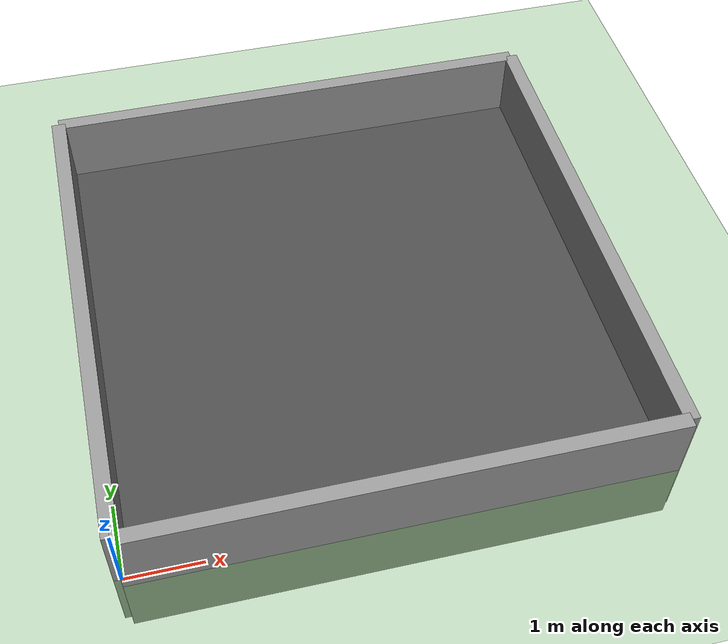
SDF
<sdf version="1.4">
 <world name="default">
  <model name="vrc_driving_terrain">
   <static>1</static>
   <link name="grass_plane">
    <visual name="visual_0">
     <cast_shadows>0</cast_shadows>
     <geometry><plane><normal>0 0 1</normal><size>150 150</size></plane></geometry>
     <material>
      <script>
       <uri>model://vrc_driving_terrain/materials/scripts</uri>
       <uri>model://vrc_driving_terrain/materials/textures</uri>
       <name>vrc/grass</name>
      </script>
     </material>
    </visual>
   </link>
   <pose>0 0 0.01 0 -0 0</pose>
  </model>
  <include><uri>model://ground_plane</uri></include>
  <include><uri>model://sun</uri></include>
  <plugin filename="librotors_gazebo_ros_interface_plugin.so" name="ros_interface_plugin"/>
  <spherical_coordinates>
   <surface_model>EARTH_WGS84</surface_model>
   <latitude_deg>47.3667</latitude_deg>
   <longitude_deg>8.5500</longitude_deg>
   <elevation>500.0</elevation>
   <heading_deg>0</heading_deg>
  </spherical_coordinates>
  <physics type="ode">
   <ode>
    <solver><type>quick</type><iters>1000</iters><sor>1.3</sor></solver>
    <constraints>
     <cfm>0</cfm>
     <erp>0.2</erp>
     <contact_max_correcting_vel>100</contact_max_correcting_vel>
     <contact_surface_layer>0.001</contact_surface_layer>
    </constraints>
   </ode>
   <max_step_size>0.01</max_step_size>
   <real_time_factor>1</real_time_factor>
   <real_time_update_rate>100</real_time_update_rate>
   <gravity>0 0 -9.8</gravity>
  </physics>
  <model name="grey_wall">
   <static>1</static>
   <link name="link">
    <visual name="visual">
     <cast_shadows>0</cast_shadows>
     <geometry><box><size>7 0.2 2</size></box></geometry>
     <material>
      <script>
       <uri>model://grey_wall/materials/scripts</uri>
       <uri>model://grey_wall/materials/textures</uri>
       <name>vrc/grey_wall</name>
      </script>
     </material>
    </visual>
   </link>
   <pose>3.5 0 0 0 0 0</pose>
  </model>
  <model name="grey_wall">
   <static>1</static>
   <link name="link">
    <visual name="visual">
     <cast_shadows>0</cast_shadows>
     <geometry><box><size>7 0.2 2</size></box></geometry>
     <material>
      <script>
       <uri>model://grey_wall/materials/scripts</uri>
       <uri>model://grey_wall/materials/textures</uri>
       <name>vrc/grey_wall</name>
      </script>
     </material>
    </visual>
   </link>
   <pose>0 3.5 0 0 0 1.57079632679</pose>
  </model>
  <model name="grey_wall">
   <static>1</static>
   <link name="link">
    <visual name="visual">
     <cast_shadows>0</cast_shadows>
     <geometry><box><size>7 0.2 2</size></box></geometry>
     <material>
      <script>
       <uri>model://grey_wall/materials/scripts</uri>
       <uri>model://grey_wall/materials/textures</uri>
       <name>vrc/grey_wall</name>
      </script>
     </material>
    </visual>
   </link>
   <pose>7 3.5 0 0 0 -1.57079632679</pose>
  </model>
  <model name="grey_wall">
   <static>1</static>
   <link name="link">
    <visual name="visual">
     <cast_shadows>0</cast_shadows>
     <geometry><box><size>7 0.2 2</size></box></geometry>
     <material>
      <script>
       <uri>model://grey_wall/materials/scripts</uri>
       <uri>model://grey_wall/materials/textures</uri>
       <name>vrc/grey_wall</name>
      </script>
     </material>
    </visual>
   </link>
   <pose>3.5 7 0 0 0 3.14159265359</pose>
  </model>
  <model name="asphalt_plane">
   <static>1</static>
   <link name="link">
    <visual name="visual">
     <cast_shadows>0</cast_shadows>
     <geometry><box><size>7 7 0.1</size></box></geometry>
     <material>
      <script>
       <uri>model://asphalt_plane/materials/scripts</uri>
       <uri>model://asphalt_plane/materials/textures</uri>
       <name>vrc/asphalt</name>
      </script>
     </material>
    </visual>
   </link>
   <pose>3.5 3.5 0 0 0 0</pose>
  </model>
 </world>
</sdf>
